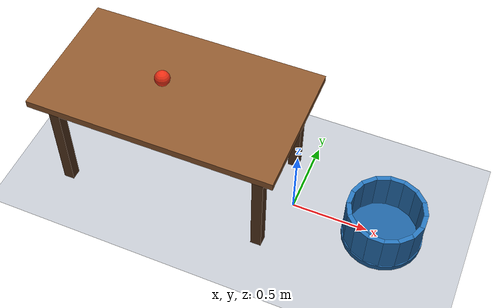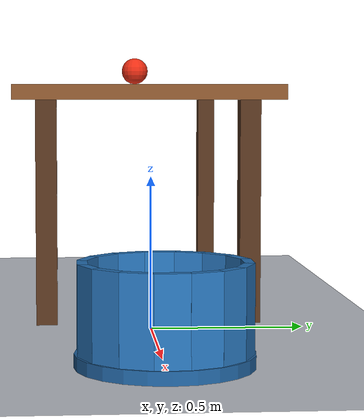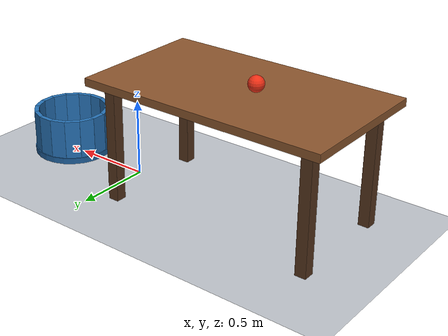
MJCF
<mujoco model="ball_rolls_into_bucket">
  <compiler angle="degree"/>
  <option timestep="0.002"/>

  <visual>
    <global azimuth="125" elevation="-25"/>
  </visual>

  <worldbody>
    <light name="overhead_light" pos="-0.3 -1.0 3.0" dir="0 0 -1" diffuse="0.8 0.8 0.8"/>

    <geom name="floor" type="plane" pos="0 0 0" size="3 3 0.1" rgba="0.75 0.77 0.80 1" friction="0.9 0.01 0.003" condim="6" solref="0.008 1"/>

    <!-- The tabletop spans x = -1.6 to 0, with its upper surface at z = 0.8. -->
    <body name="table" pos="0 0 0">
      <geom name="table_top" type="box" pos="-0.8 0 0.775" size="0.8 0.45 0.025" rgba="0.55 0.34 0.18 1" friction="0.8 0.005 0.0001" condim="3" solref="0.008 1"/>
      <geom name="table_leg_back_left" type="box" pos="-1.48 -0.34 0.375" size="0.035 0.035 0.375" rgba="0.34 0.21 0.12 1"/>
      <geom name="table_leg_back_right" type="box" pos="-1.48 0.34 0.375" size="0.035 0.035 0.375" rgba="0.34 0.21 0.12 1"/>
      <geom name="table_leg_front_left" type="box" pos="-0.12 -0.34 0.375" size="0.035 0.035 0.375" rgba="0.34 0.21 0.12 1"/>
      <geom name="table_leg_front_right" type="box" pos="-0.12 0.34 0.375" size="0.035 0.035 0.375" rgba="0.34 0.21 0.12 1"/>
    </body>

    <!-- A solid bottom and overlapping wall segments form an open bucket. -->
    <body name="bucket" pos="0.60 0 0">
      <geom name="bucket_bottom" type="cylinder" pos="0 0 0.02" size="0.26 0.02" rgba="0.12 0.38 0.62 1" friction="0.9 0.01 0.003" condim="6" solref="0.008 1"/>
      <geom name="bucket_wall_00" type="box" pos="0.235 0 0.17" size="0.015 0.05 0.13" euler="0 0 0" rgba="0.15 0.45 0.72 1" friction="0.9 0.01 0.003" condim="6" solref="0.008 1"/>
      <geom name="bucket_wall_01" type="box" pos="0.217112 0.089931 0.17" size="0.015 0.05 0.13" euler="0 0 22.5" rgba="0.15 0.45 0.72 1" friction="0.9 0.01 0.003" condim="6" solref="0.008 1"/>
      <geom name="bucket_wall_02" type="box" pos="0.166170 0.166170 0.17" size="0.015 0.05 0.13" euler="0 0 45" rgba="0.15 0.45 0.72 1" friction="0.9 0.01 0.003" condim="6" solref="0.008 1"/>
      <geom name="bucket_wall_03" type="box" pos="0.089931 0.217112 0.17" size="0.015 0.05 0.13" euler="0 0 67.5" rgba="0.15 0.45 0.72 1" friction="0.9 0.01 0.003" condim="6" solref="0.008 1"/>
      <geom name="bucket_wall_04" type="box" pos="0 0.235 0.17" size="0.015 0.05 0.13" euler="0 0 90" rgba="0.15 0.45 0.72 1" friction="0.9 0.01 0.003" condim="6" solref="0.008 1"/>
      <geom name="bucket_wall_05" type="box" pos="-0.089931 0.217112 0.17" size="0.015 0.05 0.13" euler="0 0 112.5" rgba="0.15 0.45 0.72 1" friction="0.9 0.01 0.003" condim="6" solref="0.008 1"/>
      <geom name="bucket_wall_06" type="box" pos="-0.166170 0.166170 0.17" size="0.015 0.05 0.13" euler="0 0 135" rgba="0.15 0.45 0.72 1" friction="0.9 0.01 0.003" condim="6" solref="0.008 1"/>
      <geom name="bucket_wall_07" type="box" pos="-0.217112 0.089931 0.17" size="0.015 0.05 0.13" euler="0 0 157.5" rgba="0.15 0.45 0.72 1" friction="0.9 0.01 0.003" condim="6" solref="0.008 1"/>
      <geom name="bucket_wall_08" type="box" pos="-0.235 0 0.17" size="0.015 0.05 0.13" euler="0 0 180" rgba="0.15 0.45 0.72 1" friction="0.9 0.01 0.003" condim="6" solref="0.008 1"/>
      <geom name="bucket_wall_09" type="box" pos="-0.217112 -0.089931 0.17" size="0.015 0.05 0.13" euler="0 0 202.5" rgba="0.15 0.45 0.72 1" friction="0.9 0.01 0.003" condim="6" solref="0.008 1"/>
      <geom name="bucket_wall_10" type="box" pos="-0.166170 -0.166170 0.17" size="0.015 0.05 0.13" euler="0 0 225" rgba="0.15 0.45 0.72 1" friction="0.9 0.01 0.003" condim="6" solref="0.008 1"/>
      <geom name="bucket_wall_11" type="box" pos="-0.089931 -0.217112 0.17" size="0.015 0.05 0.13" euler="0 0 247.5" rgba="0.15 0.45 0.72 1" friction="0.9 0.01 0.003" condim="6" solref="0.008 1"/>
      <geom name="bucket_wall_12" type="box" pos="0 -0.235 0.17" size="0.015 0.05 0.13" euler="0 0 270" rgba="0.15 0.45 0.72 1" friction="0.9 0.01 0.003" condim="6" solref="0.008 1"/>
      <geom name="bucket_wall_13" type="box" pos="0.089931 -0.217112 0.17" size="0.015 0.05 0.13" euler="0 0 292.5" rgba="0.15 0.45 0.72 1" friction="0.9 0.01 0.003" condim="6" solref="0.008 1"/>
      <geom name="bucket_wall_14" type="box" pos="0.166170 -0.166170 0.17" size="0.015 0.05 0.13" euler="0 0 315" rgba="0.15 0.45 0.72 1" friction="0.9 0.01 0.003" condim="6" solref="0.008 1"/>
      <geom name="bucket_wall_15" type="box" pos="0.217112 -0.089931 0.17" size="0.015 0.05 0.13" euler="0 0 337.5" rgba="0.15 0.45 0.72 1" friction="0.9 0.01 0.003" condim="6" solref="0.008 1"/>
    </body>

    <body name="ball" pos="-0.9 0 0.85">
      <freejoint name="ball_free"/>
      <geom name="ball" type="sphere" size="0.05" mass="0.12" rgba="0.92 0.18 0.08 1" friction="0.8 0.005 0.0001" condim="3" solref="0.008 1"/>
    </body>
  </worldbody>

  <keyframe>
    <key name="start" qpos="-0.9 0 0.85 1 0 0 0" qvel="1.55 0 0 0 31 0"/>
  </keyframe>
</mujoco>
